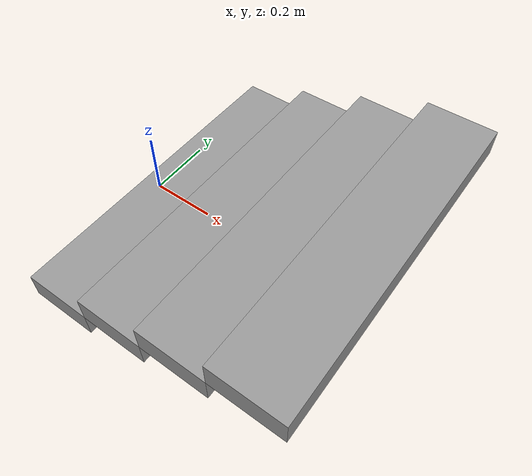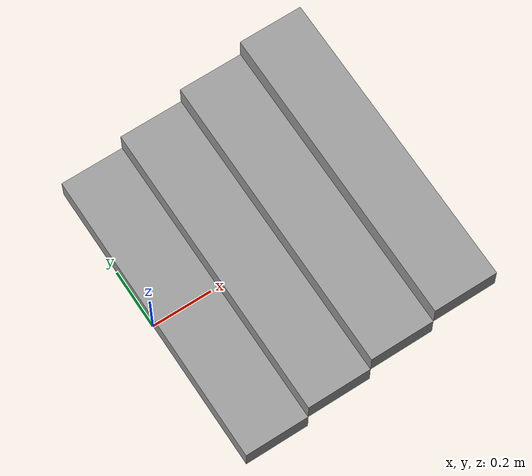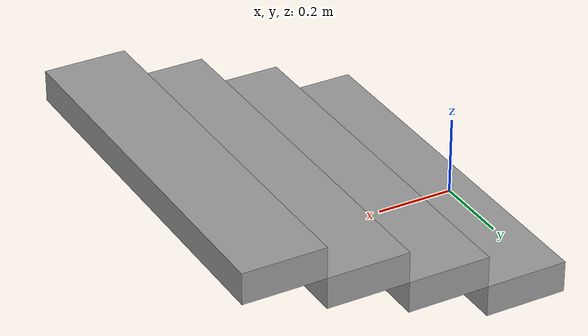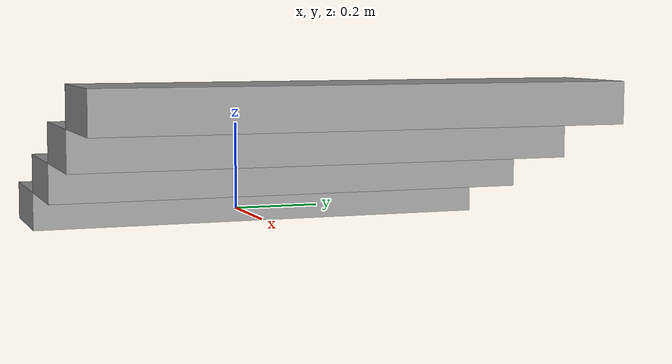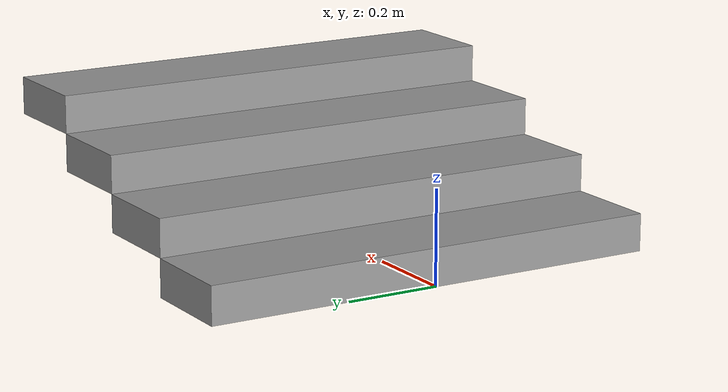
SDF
<?xml version="1.0" ?>
<sdf version="1.6">
  <model name="parametric_stairs">
    <static>true</static>
    <link name="step_0">
      <pose>0.105 0 0.04 0 0 0</pose>
      <collision name="collision">
        <geometry>
          <box>
            <size>0.21 1.0 0.08</size>
          </box>
        </geometry>
      </collision>
      <visual name="visual">
        <geometry>
          <box>
            <size>0.21 1.0 0.08</size>
          </box>
        </geometry>
        <material>
          <script>
            <uri>file://media/materials/scripts/gazebo.material</uri>
            <name>Gazebo/Grey</name>
          </script>
        </material>
      </visual>
    </link>
    <link name="step_1">
      <pose>0.315 0 0.12 0 0 0</pose>
      <collision name="collision">
        <geometry>
          <box>
            <size>0.21 1.0 0.08</size>
          </box>
        </geometry>
      </collision>
      <visual name="visual">
        <geometry>
          <box>
            <size>0.21 1.0 0.08</size>
          </box>
        </geometry>
        <material>
          <script>
            <uri>file://media/materials/scripts/gazebo.material</uri>
            <name>Gazebo/Grey</name>
          </script>
        </material>
      </visual>
    </link>
    <link name="step_2">
      <pose>0.525 0 0.2 0 0 0</pose>
      <collision name="collision">
        <geometry>
          <box>
            <size>0.21 1.0 0.08</size>
          </box>
        </geometry>
      </collision>
      <visual name="visual">
        <geometry>
          <box>
            <size>0.21 1.0 0.08</size>
          </box>
        </geometry>
        <material>
          <script>
            <uri>file://media/materials/scripts/gazebo.material</uri>
            <name>Gazebo/Grey</name>
          </script>
        </material>
      </visual>
    </link>
    <link name="step_3">
      <pose>0.735 0 0.28 0 0 0</pose>
      <collision name="collision">
        <geometry>
          <box>
            <size>0.21 1.0 0.08</size>
          </box>
        </geometry>
      </collision>
      <visual name="visual">
        <geometry>
          <box>
            <size>0.21 1.0 0.08</size>
          </box>
        </geometry>
        <material>
          <script>
            <uri>file://media/materials/scripts/gazebo.material</uri>
            <name>Gazebo/Grey</name>
          </script>
        </material>
      </visual>
    </link>
  </model>
</sdf>
